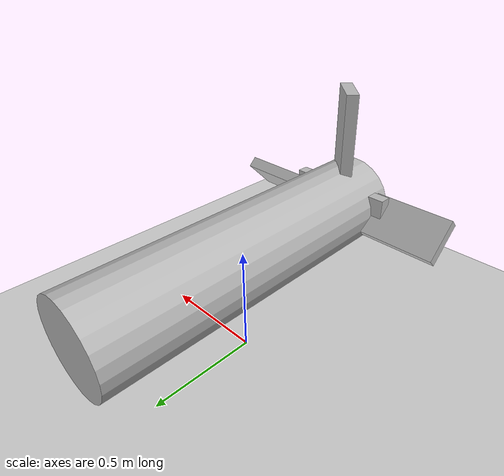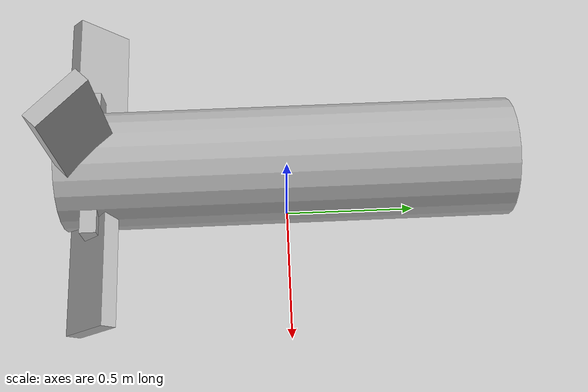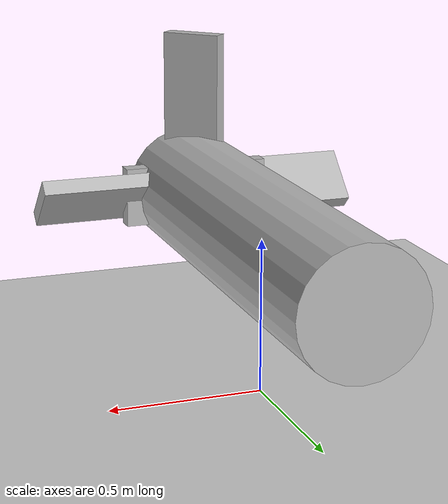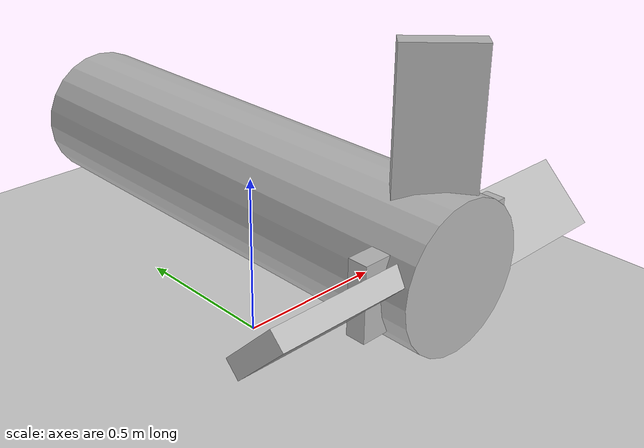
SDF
<?xml version="1.0" ?>
<sdf version="1.11">
  <!--
    Try moving a model using the command in the following CDATA block::
  -->
  <![CDATA[
    gz service -s /world/shapes/set_pose \
               --reqtype gz.msgs.Pose --reptype gz.msgs.Boolean \
               --timeout 300 --req 'name: "box", position: {z: 5.0}'
  ]]>
  <world name="dron">
    <scene>
      <ambient>1.0 1.0 1.0</ambient>
      <background>0.8 0.8 0.8</background>
    </scene>

    <light type="directional" name="sun">
      <cast_shadows>true</cast_shadows>
      <pose>0 0 10 0 0 0</pose>
      <diffuse>0.8 0.8 0.8 1</diffuse>
      <specular>0.2 0.2 0.2 1</specular>
      <attenuation>
        <range>1000</range>
        <constant>0.9</constant>
        <linear>0.01</linear>
        <quadratic>0.001</quadratic>
      </attenuation>
      <direction>-0.5 0.1 -0.9</direction>
    </light>

    <model name="ground_plane">
      <static>true</static>
      <link name="link">
        <collision name="collision">
          <geometry>
            <plane>
              <normal>0 0 1</normal>
              <size>100 100</size>
            </plane>
          </geometry>
        </collision>
        <visual name="visual">
          <geometry>
           <plane>
              <normal>0 0 1</normal>
              <size>100 100</size>
            </plane>
          </geometry>
          <material>
	    <ambient>0.8 0.8 0.8 1</ambient>
            <diffuse>0.8 0.8 0.8 1</diffuse>
            <specular>0.8 0.8 0.8 1</specular>
          </material>
        </visual>
      </link>
    </model>

    <model name='drone'>
    <pose>0 0 0.5 1.5707963267948966 0 0</pose>

  <link name='body'>
    <pose>0 0 0 0 0 0</pose>
<inertial>
      <mass>1.32741228718348</mass>
      <inertia>
        <ixx>86.28907821859966</ixx>
        <ixy>0</ixy>
        <ixz>0</ixz>
        <iyy>86.28907821859966</iyy>
        <iyz>0</iyz>
        <izz>5.026548245743671</izz>
      </inertia>
    </inertial>

     <!-- Body as a simple cylinder -->
    <visual name='body_visual'>
      <geometry>
        <cylinder>
          <radius>0.2</radius>
          <length>1.5</length>
        </cylinder>
      </geometry>
    </visual>
    <collision name='body_collision'>
      <geometry>
        <cylinder>
          <radius>0.2</radius>
          <length>1</length>
        </cylinder>
      </geometry>
    </collision>
  </link>

  <link name='propeller'>
    <pose>0 0 0.65 3.14159 0 0</pose>
    <inertial>
      <mass>1.820000000000004</mass>
      <inertia>
        <ixx>0.45999415237916674</ixx>
<ixy>0</ixy>
        <ixz>0</ixz>
        <iyy>0.45999415237916674</iyy>
        <iyz>0</iyz>
        <izz>0.9091666666666668</izz>
      </inertia>
    </inertial>

    <!-- Propeller as a simple box with multiple blades -->
    <visual name="propeller_visual">
      <geometry>
        <box>
          <size>0.5 0.2 0.05455</size>
        </box>
      </geometry>
    </visual>
    <collision name="propeller_collision">
      <geometry>
        <box>
          <size>0.5 0.2 0.05455</size>
        </box>
      </geometry>
    </collision>

    <!-- Blade arrangements simplified -->
    <visual name="blade1_visual">
      <pose>0.3 0 0 -0.7853981633974483 0 0.0</pose>
      <geometry>
        <box>
          <size>0.5 0.2 0.05455</size>
        </box>
      </geometry>
    </visual>
    <collision name="blade1_collision">
      <pose>0.3 0 0 -0.7853981633974483 0 0.0</pose>
 <geometry>
        <box>
          <size>0.5 0.2 0.05455</size>
        </box>
      </geometry>
    </collision>

     <!-- Other blades as simple boxes -->
    <visual name="blade2_visual">
      <pose>0 -0.3 0 0.7853981633974483 0 1.5707963267948966</pose>
      <geometry>
        <box>
          <size>0.5 0.2 0.05455</size>
        </box>
      </geometry>
    </visual>
    <collision name="blade2_collision">
      <pose>0 -0.3 0 0.7853981633974483 0 1.5707963267948966</pose>
      <geometry>
        <box>
          <size>0.5 0.2 0.05455</size>
        </box>
      </geometry>
    </collision>

    <visual name="blade3_visual">
      <pose>-0.3 0 0 0.7853981633974483 0 0.0</pose>
      <geometry>
        <box>
          <size>0.5 0.2 0.05455</size>

 </box>
      </geometry>
    </visual>
    <collision name="blade3_collision">
      <pose>-0.3 0 0 0.7853981633974483 0 0.0</pose>
      <geometry>
        <box>
          <size>0.5 0.2 0.05455</size>
        </box>
      </geometry>
    </collision>

    <visual name="blade4_visual">
      <pose>0 -0.3 0 0.7853981633974483 0 1.5707963267948966</pose>
      <geometry>
        <box>
          <size>0.5 0.2 0.05455</size>
        </box>
      </geometry>
    </visual>
    <collision name="blade4_collision">
      <pose>0 -0.3 0 0.7853981633974483 0 1.5707963267948966</pose>
      <geometry>
        <box>
          <size>0.5 0.2 0.05455</size>
        </box>
      </geometry>
    </collision>
  </link>

  <joint name='propeller_joint' type='revolute'>
    <parent>body</parent>
    <child>propeller</child>
 <axis>
      <xyz>0 0 1</xyz>
      <use_parent_model_frame>1</use_parent_model_frame>
      <limit>
        <lower>-1e+12</lower>
        <upper>1e+12</upper>
        <effort>-1</effort>
        <velocity>-1</velocity>
      </limit>
    </axis>
  </joint>

</model>

  </world>
</sdf>
